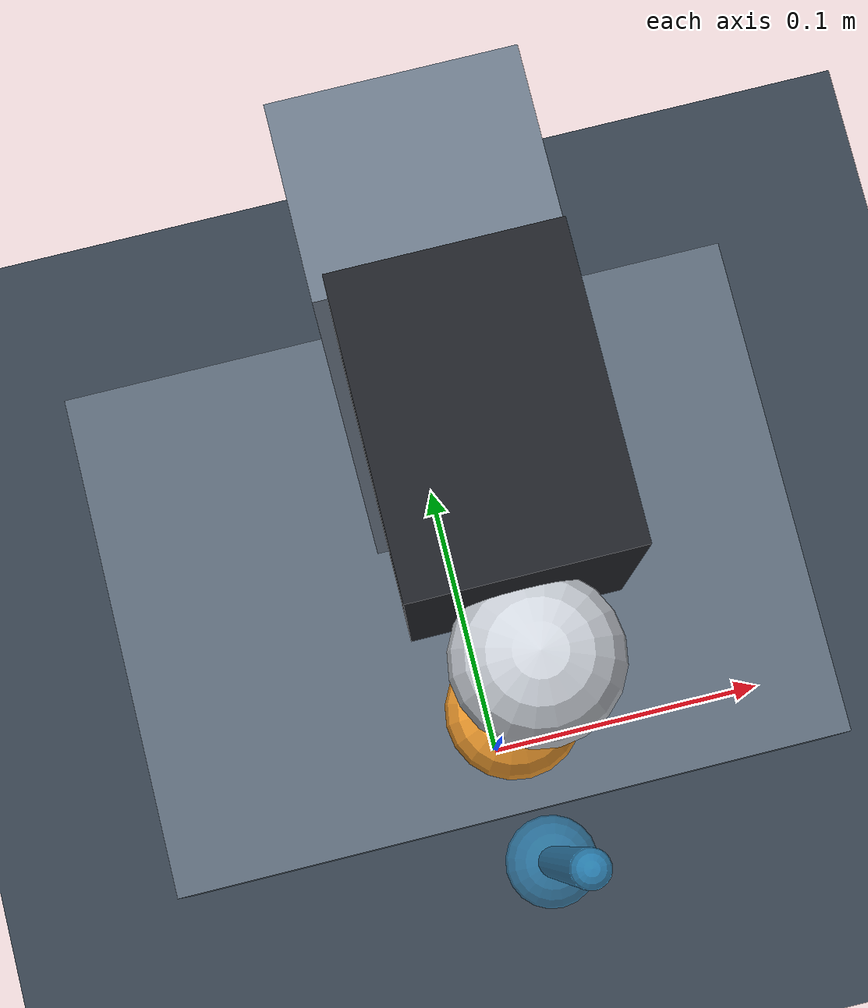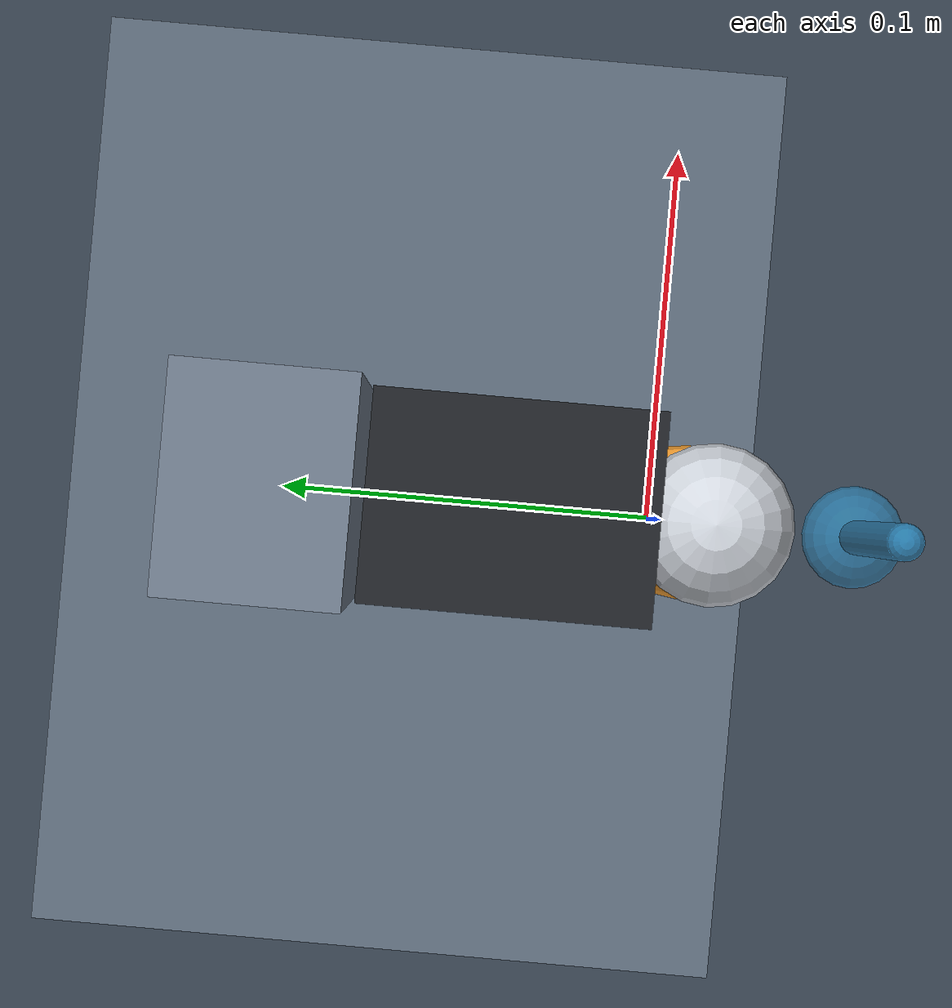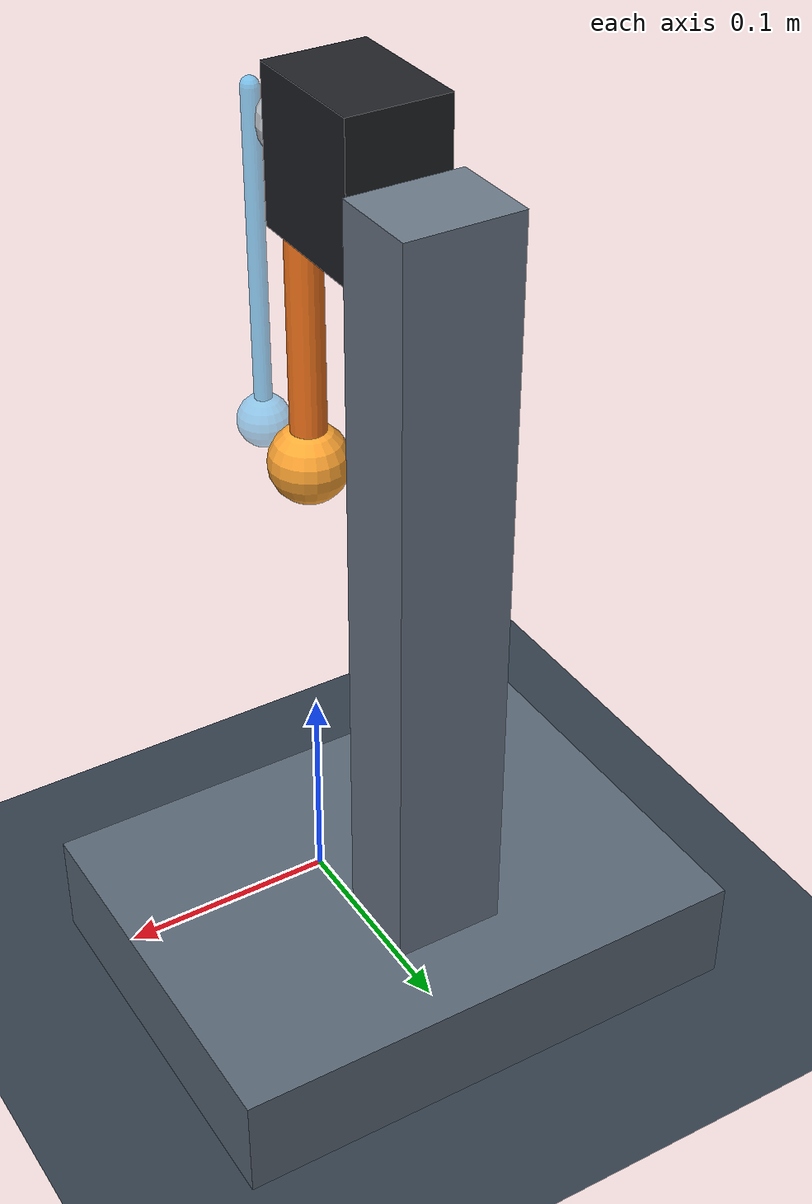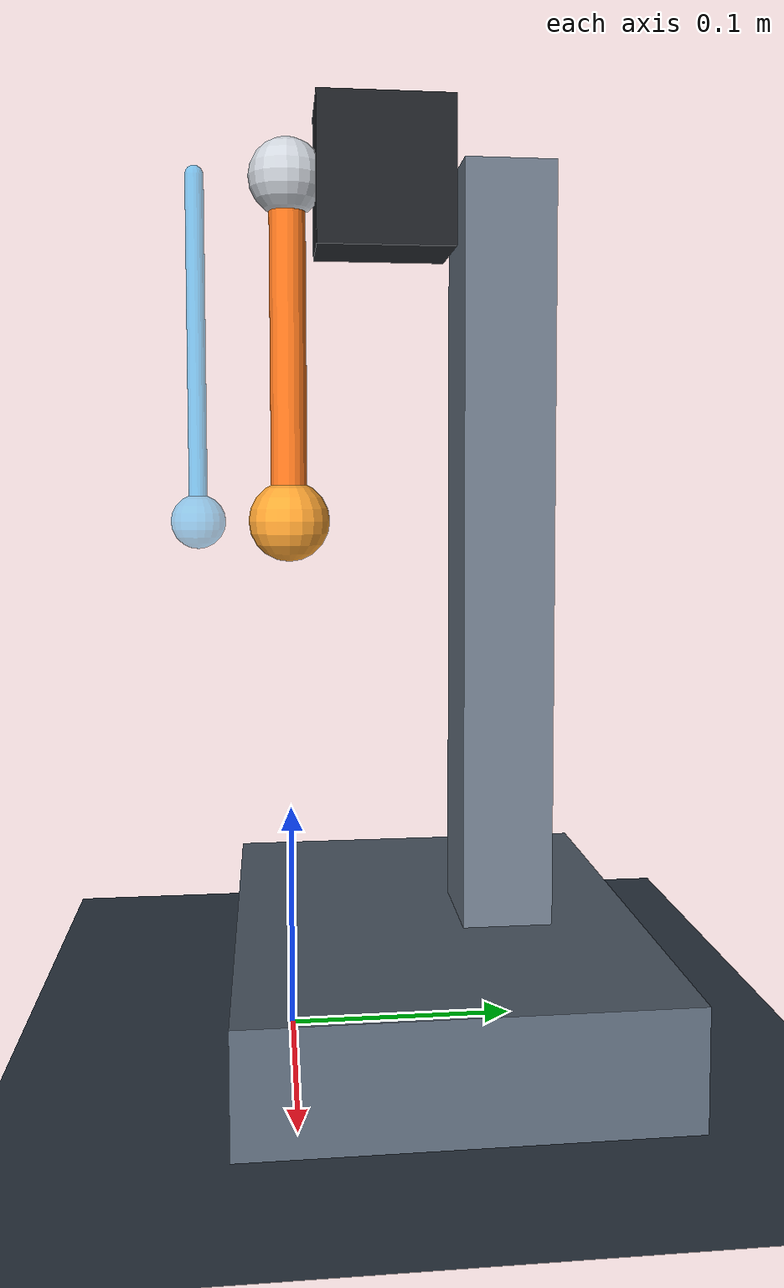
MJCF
<mujoco model="Robot A - servo bench - assumed parameters">
  <compiler angle="radian"/>
  <option timestep="0.002" gravity="0 0 -9.81" integrator="implicitfast"/>
  <visual>
    <global offwidth="1280" offheight="800"/>
    <headlight ambient="0.45 0.45 0.45" diffuse="0.8 0.8 0.8"/>
    <rgba haze="0.12 0.16 0.21 1"/>
  </visual>
  <asset>
    <texture name="floor_tex" type="2d" builtin="checker" rgb1="0.17 0.21 0.26" rgb2="0.23 0.28 0.33" width="512" height="512"/>
    <material name="floor_mat" texture="floor_tex" texrepeat="6 6" reflectance="0.12"/>
  </asset>
  <worldbody>
    <light pos="0 -1 2" dir="0 0 -1"/>
    <geom name="floor" type="plane" size="1 1 0.1" material="floor_mat"/>
    <geom type="box" pos="0 0.065 0.025" size="0.12 0.09 0.025" rgba="0.35 0.4 0.46 1"/>
    <geom type="box" pos="0 0.095 0.205" size="0.025 0.02 0.18" rgba="0.42 0.47 0.53 1"/>
    <geom name="servo_case" type="box" pos="0 0.042 0.38" size="0.022 0.03 0.032" rgba="0.12 0.13 0.15 1"/>
    <geom type="sphere" pos="0 0 0.38" size="0.017" rgba="0.8 0.82 0.85 1"/>
    <body name="arm" pos="0 0 0.38">
      <joint name="servo" type="hinge" axis="0 1 0" range="-0.7853981634 0.7853981634" damping="0.003" armature="0.00002"/>
      <geom name="arm_geom" type="capsule" fromto="0 0 0 0 0 -0.15" size="0.008" mass="0.04" rgba="1 0.48 0.12 1"/>
      <body name="payload" pos="0 0 -0.15">
        <geom name="payload_geom" type="sphere" size="0.018" mass="0.05" rgba="1 0.65 0.2 1"/>
      </body>
    </body>
    <body name="target" mocap="true" pos="0 -0.04 0.38">
      <geom type="capsule" fromto="0 0 0 0 0 -0.15" size="0.004" rgba="0.15 0.7 1 0.55" contype="0" conaffinity="0"/>
      <geom type="sphere" pos="0 0 -0.15" size="0.012" rgba="0.15 0.7 1 0.45" contype="0" conaffinity="0"/>
    </body>
  </worldbody>
  <actuator><motor name="servo_torque" joint="servo" gear="1"/></actuator>
</mujoco>
